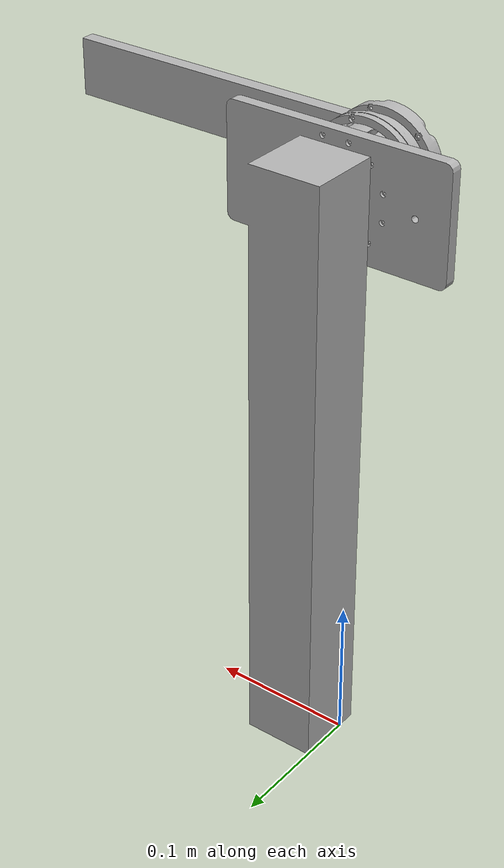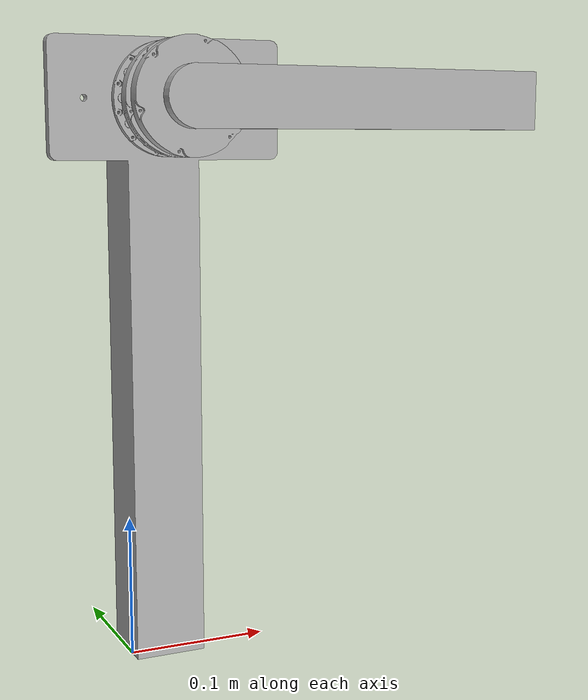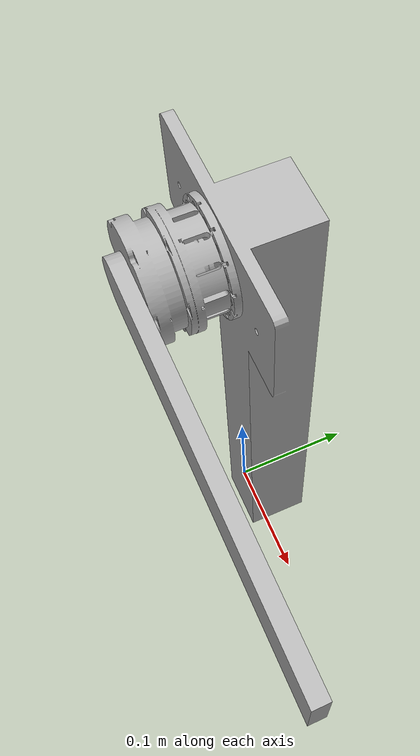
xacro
<?xml version="1.0" ?>
<robot name="TestBench" xmlns:xacro="http://www.ros.org/wiki/xacro">

<xacro:include filename="$(find TestBench_description)/urdf/materials.xacro" />
<xacro:include filename="$(find TestBench_description)/urdf/TestBench.trans" />
<xacro:include filename="$(find TestBench_description)/urdf/TestBench.gazebo" />
<link name="base_link">
  <inertial>
    <origin xyz="0.025000000000000407 0.00940744810008609 0.2260239908580434" rpy="0 0 0"/>
    <mass value="9.047969930257539"/>
    <inertia ixx="0.147715" iyy="0.148792" izz="0.005766" ixy="0.0" iyz="0.003846" ixz="-0.0"/>
  </inertial>
  <visual>
    <origin xyz="0 0 0" rpy="0 0 0"/>
    <geometry>
      <mesh filename="file://$(find TestBench_description)/meshes/base_link.stl" scale="0.001 0.001 0.001"/>
    </geometry>
    <material name="silver"/>
  </visual>
  <collision>
    <origin xyz="0 0 0" rpy="0 0 0"/>
    <geometry>
      <mesh filename="file://$(find TestBench_description)/meshes/base_link.stl" scale="0.001 0.001 0.001"/>
    </geometry>
  </collision>
</link>

<link name="drive_1">
  <inertial>
    <origin xyz="-1.825550659889999e-05 -0.03798953196655614 0.0001061912256529185" rpy="0 0 0"/>
    <mass value="0.9118420794553316"/>
    <inertia ixx="0.000573" iyy="0.000716" izz="0.000573" ixy="-0.0" iyz="1e-06" ixz="0.0"/>
  </inertial>
  <visual>
    <origin xyz="-0.025 0.008 -0.39" rpy="0 0 0"/>
    <geometry>
      <mesh filename="file://$(find TestBench_description)/meshes/drive_1.stl" scale="0.001 0.001 0.001"/>
    </geometry>
    <material name="silver"/>
  </visual>
  <collision>
    <origin xyz="-0.025 0.008 -0.39" rpy="0 0 0"/>
    <geometry>
      <mesh filename="file://$(find TestBench_description)/meshes/drive_1.stl" scale="0.001 0.001 0.001"/>
    </geometry>
  </collision>
</link>

<link name="stick_1">
  <inertial>
    <origin xyz="0.11696268033906883 -0.00500003450010815 -3.359650847523099e-07" rpy="0 0 0"/>
    <mass value="0.8352549817917543"/>
    <inertia ixx="0.000117" iyy="0.005043" izz="0.00494" ixy="-0.0" iyz="0.0" ixz="0.0"/>
  </inertial>
  <visual>
    <origin xyz="-0.02494 0.07217 -0.390214" rpy="0 0 0"/>
    <geometry>
      <mesh filename="file://$(find TestBench_description)/meshes/stick_1.stl" scale="0.001 0.001 0.001"/>
    </geometry>
    <material name="silver"/>
  </visual>
  <collision>
    <origin xyz="-0.02494 0.07217 -0.390214" rpy="0 0 0"/>
    <geometry>
      <mesh filename="file://$(find TestBench_description)/meshes/stick_1.stl" scale="0.001 0.001 0.001"/>
    </geometry>
  </collision>
</link>

<joint name="drive_to_base_link" type="fixed">
  <origin xyz="0.025 -0.008 0.39" rpy="0 0 0"/>
  <parent link="base_link"/>
  <child link="drive_1"/>
</joint>

<joint name="driver_joint" type="continuous">
  <origin xyz="-6e-05 -0.06417 0.000214" rpy="0 0 0"/>
  <parent link="drive_1"/>
  <child link="stick_1"/>
  <axis xyz="0.0 -1.0 0.0"/>
</joint>

</robot>

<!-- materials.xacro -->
<robot name="TestBench" xmlns:xacro="http://www.ros.org/wiki/xacro" >

<material name="silver">
  <color rgba="0.700 0.700 0.700 1.000"/>
</material>

</robot>

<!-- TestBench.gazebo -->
<robot name="TestBench" xmlns:xacro="http://www.ros.org/wiki/xacro" >

<xacro:property name="body_color" value="Gazebo/Silver" />

<gazebo>
  <plugin name="control" filename="libgazebo_ros_control.so"/>
</gazebo>
<gazebo reference="base_link">
  <material>${body_color}</material>
  <mu1>0.2</mu1>
  <mu2>0.2</mu2>
  <self_collide>true</self_collide>
  <gravity>true</gravity>
</gazebo>

<gazebo reference="drive_1">
  <material>${body_color}</material>
  <mu1>0.2</mu1>
  <mu2>0.2</mu2>
  <self_collide>true</self_collide>
</gazebo>

<gazebo reference="stick_1">
  <material>${body_color}</material>
  <mu1>0.2</mu1>
  <mu2>0.2</mu2>
  <self_collide>true</self_collide>
</gazebo>

</robot>
